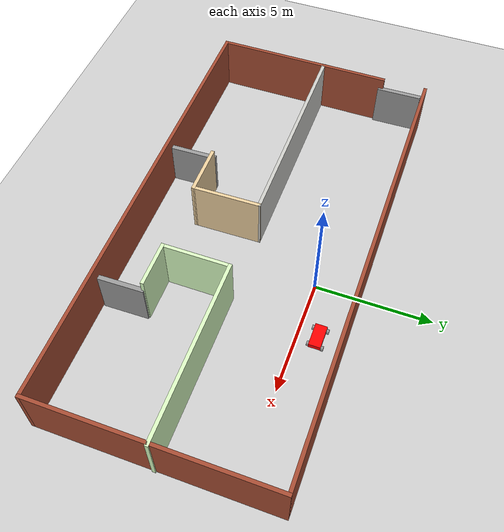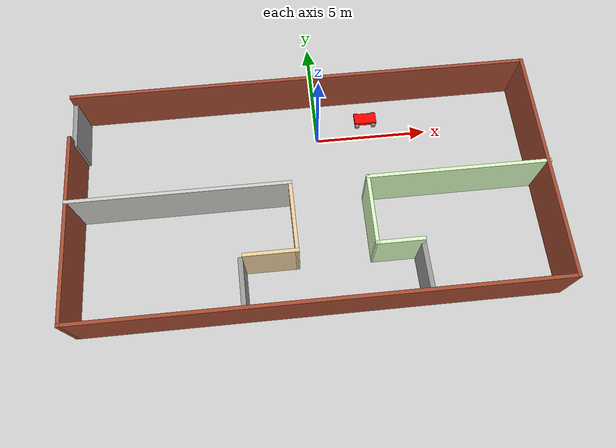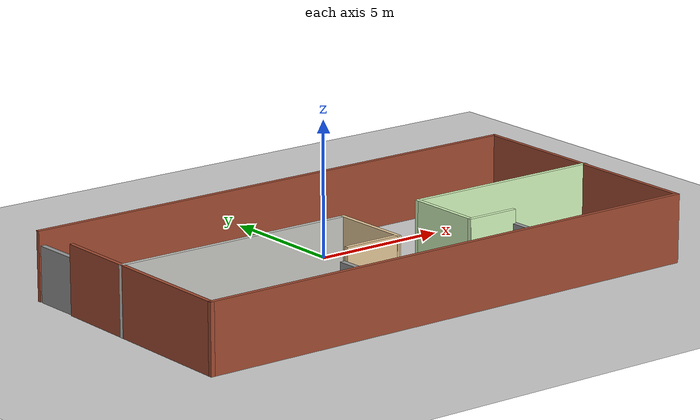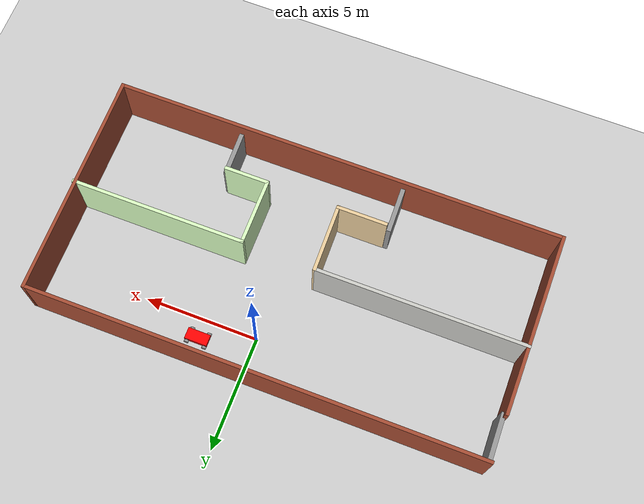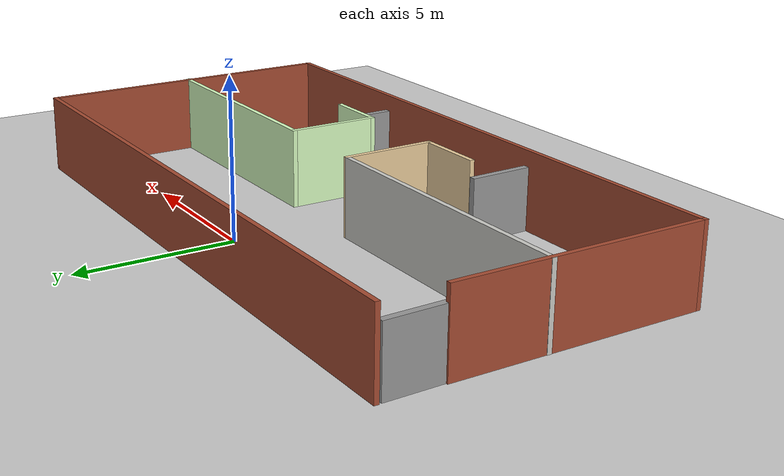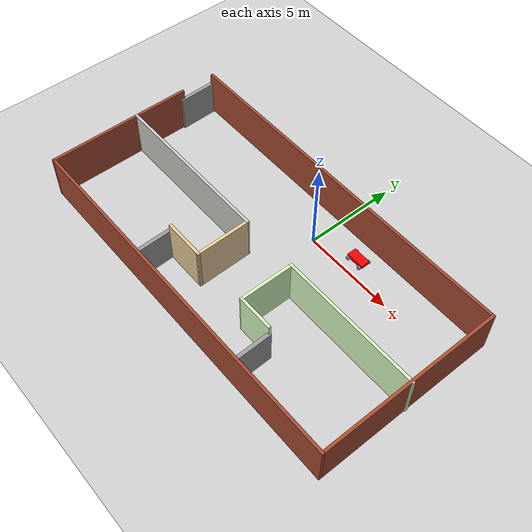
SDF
<sdf version="1.6">
 <world name="default">
  <model name="ground_plane">
   <static>1</static>
   <link name="ground_plane::link">
    <collision name="collision">
     <geometry><plane><normal>0 0 1</normal><size>100 100</size></plane></geometry>
     <surface><friction><ode><mu>100</mu><mu2>50</mu2></ode></friction></surface>
    </collision>
    <visual name="visual">
     <cast_shadows>0</cast_shadows>
     <geometry><plane><normal>0 0 1</normal><size>100 100</size></plane></geometry>
     <material>
      <script><uri>file://media/materials/scripts/gazebo.material</uri><name>Gazebo/Grey</name></script>
     </material>
    </visual>
   </link>
  </model>
  <model name="robot_space">
   <pose>-0.5915 -3.028 0 0 -0 0</pose>
   <link name="Door_3">
    <collision name="Door_3_Collision">
     <geometry><box><size>2.05653 0.2 2</size></box></geometry>
     <pose>0 0 1 0 -0 0</pose>
    </collision>
    <visual name="Door_3_Visual">
     <pose>0 0 1 0 -0 0</pose>
     <geometry><box><size>2.05653 0.2 2</size></box></geometry>
     <material>
      <script><uri>file://media/materials/scripts/gazebo.material</uri><name>Gazebo/Grey</name></script>
     </material>
    </visual>
    <pose>-3.06434 -3.84105 0 0 0 -1.54642</pose>
   </link>
   <link name="Door_4">
    <collision name="Door_4_Collision">
     <geometry><box><size>2.01581 0.2 2</size></box></geometry>
     <pose>0 0 1 0 -0 0</pose>
    </collision>
    <visual name="Door_4_Visual">
     <pose>0 0 1 0 -0 0</pose>
     <geometry><box><size>2.01581 0.2 2</size></box></geometry>
     <material>
      <script><uri>file://media/materials/scripts/gazebo.material</uri><name>Gazebo/Grey</name></script>
     </material>
    </visual>
    <pose>-9.88584 3.78209 0 0 -0 1.59102</pose>
   </link>
   <link name="Door_5">
    <collision name="Door_5_Collision">
     <geometry><box><size>1.94971 0.2 2</size></box></geometry>
     <pose>0 0 1 0 -0 0</pose>
    </collision>
    <visual name="Door_5_Visual">
     <pose>0 0 1 0 -0 0</pose>
     <geometry><box><size>1.94971 0.2 2</size></box></geometry>
     <material>
      <script><uri>file://media/materials/scripts/gazebo.material</uri><name>Gazebo/Grey</name></script>
     </material>
    </visual>
    <pose>4.28496 -3.82425 0 0 -0 1.59278</pose>
   </link>
   <link name="Wall_11">
    <collision name="Wall_11_Collision">
     <geometry><box><size>20 0.15 2.5</size></box></geometry>
     <pose>0 0 1.25 0 -0 0</pose>
    </collision>
    <visual name="Wall_11_Visual">
     <pose>0 0 1.25 0 -0 0</pose>
     <geometry><box><size>20 0.15 2.5</size></box></geometry>
     <material>
      <script><uri>file://media/materials/scripts/gazebo.material</uri><name>Gazebo/Bricks</name></script>
      <ambient>1 1 1 1</ambient>
     </material>
     <meta><layer>0</layer></meta>
    </visual>
    <pose>-0.022053 4.925 0 0 -0 0</pose>
   </link>
   <link name="Wall_12">
    <collision name="Wall_12_Collision">
     <geometry><box><size>10 0.15 2.5</size></box></geometry>
     <pose>0 0 1.25 0 -0 0</pose>
    </collision>
    <visual name="Wall_12_Visual">
     <pose>0 0 1.25 0 -0 0</pose>
     <geometry><box><size>10 0.15 2.5</size></box></geometry>
     <material>
      <script><uri>file://media/materials/scripts/gazebo.material</uri><name>Gazebo/Bricks</name></script>
      <ambient>1 1 1 1</ambient>
     </material>
     <meta><layer>0</layer></meta>
    </visual>
    <pose>9.90295 0 0 0 0 -1.5708</pose>
   </link>
   <link name="Wall_13">
    <collision name="Wall_13_Collision">
     <geometry><box><size>20 0.15 2.5</size></box></geometry>
     <pose>0 0 1.25 0 -0 0</pose>
    </collision>
    <visual name="Wall_13_Visual">
     <pose>0 0 1.25 0 -0 0</pose>
     <geometry><box><size>20 0.15 2.5</size></box></geometry>
     <material>
      <script><uri>file://media/materials/scripts/gazebo.material</uri><name>Gazebo/Bricks</name></script>
      <ambient>1 1 1 1</ambient>
     </material>
     <meta><layer>0</layer></meta>
    </visual>
    <pose>-0.022053 -4.925 0 0 -0 3.14159</pose>
   </link>
   <link name="Wall_14">
    <collision name="Wall_14_Collision">
     <geometry><box><size>8 0.15 2.5</size></box></geometry>
     <pose>0 0 1.25 0 -0 0</pose>
    </collision>
    <visual name="Wall_14_Visual">
     <pose>0 0 1.25 0 -0 0</pose>
     <geometry><box><size>8 0.15 2.5</size></box></geometry>
     <material>
      <script><uri>file://media/materials/scripts/gazebo.material</uri><name>Gazebo/Bricks</name></script>
      <ambient>1 1 1 1</ambient>
     </material>
     <meta><layer>0</layer></meta>
    </visual>
    <pose>-9.94705 -1 0 0 -0 1.5708</pose>
   </link>
   <link name="Wall_20">
    <collision name="Wall_20_Collision">
     <geometry><box><size>9.25 0.15 2.5</size></box></geometry>
     <pose>0 0 1.25 0 -0 0</pose>
    </collision>
    <visual name="Wall_20_Visual">
     <pose>0 0 1.25 0 -0 0</pose>
     <geometry><box><size>9.25 0.15 2.5</size></box></geometry>
     <material>
      <script><uri>file://media/materials/scripts/gazebo.material</uri><name>Gazebo/CeilingTiled</name></script>
      <ambient>0.921569 0.807843 0.615686 1</ambient>
     </material>
     <meta><layer>0</layer></meta>
    </visual>
    <pose>-5.4065 0.017998 0 0 -0 0</pose>
   </link>
   <link name="Wall_21">
    <collision name="Wall_21_Collision">
     <geometry><box><size>3.04738 0.15 2.5</size></box></geometry>
     <pose>0 0 1.25 0 -0 0</pose>
    </collision>
    <visual name="Wall_21_Visual">
     <pose>0 0 1.25 0 -0 0</pose>
     <geometry><box><size>3.04738 0.15 2.5</size></box></geometry>
     <material>
      <script><uri>file://media/materials/scripts/gazebo.material</uri><name>Gazebo/Grey</name></script>
      <ambient>0.921569 0.807843 0.615686 1</ambient>
     </material>
     <meta><layer>0</layer></meta>
    </visual>
    <pose>-0.833 -1.4305 0 0 0 -1.55457</pose>
   </link>
   <link name="Wall_22">
    <collision name="Wall_22_Collision">
     <geometry><box><size>2.24956 0.15 2.5</size></box></geometry>
     <pose>0 0 1.25 0 -0 0</pose>
    </collision>
    <visual name="Wall_22_Visual">
     <pose>0 0 1.25 0 -0 0</pose>
     <geometry><box><size>2.24956 0.15 2.5</size></box></geometry>
     <material>
      <script><uri>file://media/materials/scripts/gazebo.material</uri><name>Gazebo/Grey</name></script>
      <ambient>0.921569 0.807843 0.615686 1</ambient>
     </material>
     <meta><layer>0</layer></meta>
    </visual>
    <pose>-1.8595 -2.8785 0 0 -0 3.14112</pose>
   </link>
   <link name="Wall_25">
    <collision name="Wall_25_Collision">
     <geometry><box><size>7.75 0.15 2.5</size></box></geometry>
     <pose>0 0 1.25 0 -0 0</pose>
    </collision>
    <visual name="Wall_25_Visual">
     <pose>0 0 1.25 0 -0 0</pose>
     <geometry><box><size>7.75 0.15 2.5</size></box></geometry>
     <material>
      <script><uri>file://media/materials/scripts/gazebo.material</uri><name>Gazebo/Grey</name></script>
      <ambient>0.854902 1 0.760784 1</ambient>
     </material>
     <meta><layer>0</layer></meta>
    </visual>
    <pose>6.1565 -0.028002 0 0 -0 3.14159</pose>
   </link>
   <link name="Wall_26">
    <collision name="Wall_26_Collision">
     <geometry><box><size>3 0.15 2.5</size></box></geometry>
     <pose>0 0 1.25 0 -0 0</pose>
    </collision>
    <visual name="Wall_26_Visual">
     <pose>0 0 1.25 0 -0 0</pose>
     <geometry><box><size>3 0.15 2.5</size></box></geometry>
     <material>
      <script><uri>file://media/materials/scripts/gazebo.material</uri><name>Gazebo/Grey</name></script>
      <ambient>0.854902 1 0.760784 1</ambient>
     </material>
     <meta><layer>0</layer></meta>
    </visual>
    <pose>2.3565 -1.453 0 0 0 -1.5708</pose>
   </link>
   <link name="Wall_27">
    <collision name="Wall_27_Collision">
     <geometry><box><size>2 0.15 2.5</size></box></geometry>
     <pose>0 0 1.25 0 -0 0</pose>
    </collision>
    <visual name="Wall_27_Visual">
     <pose>0 0 1.25 0 -0 0</pose>
     <geometry><box><size>2 0.15 2.5</size></box></geometry>
     <material>
      <script><uri>file://media/materials/scripts/gazebo.material</uri><name>Gazebo/Grey</name></script>
      <ambient>0.854902 1 0.760784 1</ambient>
     </material>
     <meta><layer>0</layer></meta>
    </visual>
    <pose>3.28134 -2.87817 0 0 0 -0.000181</pose>
   </link>
   <static>1</static>
  </model>
  <model name="robot_1_0">
   <link name="link_0">
    <pose>-3 10 0.2 0 -0 0</pose>
    <inertial>
     <mass>1</mass>
     <inertia>
      <ixx>0.166667</ixx>
      <ixy>0</ixy>
      <ixz>0</ixz>
      <iyy>0.166667</iyy>
      <iyz>0</iyz>
      <izz>0.166667</izz>
     </inertia>
    </inertial>
    <visual name="visual">
     <geometry><box><size>1 0.5 0.2</size></box></geometry>
     <material>
      <lighting>1</lighting>
      <script><uri>file://media/materials/scripts/gazebo.material</uri><name>Gazebo/Grey</name></script>
      <shader type="pixel"><normal_map>__default__</normal_map></shader>
      <ambient>0.5 0.75 0 1</ambient>
      <diffuse>1 0 0 1</diffuse>
      <specular>0.2 0.2 0.2 1</specular>
      <emissive>0.1 0 0.1 1</emissive>
     </material>
    </visual>
    <collision name="collision">
     <geometry><box><size>1 0.5 0.2</size></box></geometry>
     <surface>
      <friction>
       <ode><mu>1</mu><mu2>1</mu2><fdir1>0 0 0</fdir1><slip1>0</slip1><slip2>0</slip2></ode>
       <torsional>
        <coefficient>1</coefficient>
        <patch_radius>0</patch_radius>
        <surface_radius>0</surface_radius>
        <use_patch_radius>1</use_patch_radius>
        <ode><slip>0</slip></ode>
       </torsional>
      </friction>
      <bounce><restitution_coefficient>0</restitution_coefficient><threshold>1e+06</threshold></bounce>
      <contact>
       <collide_without_contact>0</collide_without_contact>
       <collide_without_contact_bitmask>1</collide_without_contact_bitmask>
       <collide_bitmask>1</collide_bitmask>
       <ode>
        <soft_cfm>0</soft_cfm>
        <soft_erp>0.2</soft_erp>
        <kp>1e+13</kp>
        <kd>1</kd>
        <max_vel>0.01</max_vel>
        <min_depth>0</min_depth>
       </ode>
       <bullet>
        <split_impulse>1</split_impulse>
        <split_impulse_penetration_threshold>-0.01</split_impulse_penetration_threshold>
        <soft_cfm>0</soft_cfm>
        <soft_erp>0.2</soft_erp>
        <kp>1e+13</kp>
        <kd>1</kd>
       </bullet>
      </contact>
     </surface>
    </collision>
   </link>
   <link name="link_1">
    <pose>-2.64 9.69998 0.1 1.5707 -0 0</pose>
    <inertial>
     <mass>1</mass>
     <inertia><ixx>0.145833</ixx><ixy>0</ixy><ixz>0</ixz><iyy>0.145833</iyy><iyz>0</iyz><izz>0.125</izz></inertia>
    </inertial>
    <visual name="visual">
     <geometry><cylinder><radius>0.1</radius><length>0.1</length></cylinder></geometry>
     <material>
      <lighting>1</lighting>
      <script><uri>file://media/materials/scripts/gazebo.material</uri><name>Gazebo/Grey</name></script>
      <shader type="pixel"><normal_map>__default__</normal_map></shader>
      <ambient>0.3 0.3 0.3 1</ambient>
      <diffuse>0.7 0.7 0.7 1</diffuse>
      <specular>0.01 0.01 0.01 1</specular>
      <emissive>0 0 0 1</emissive>
     </material>
    </visual>
    <collision name="collision">
     <geometry><cylinder><radius>0.1</radius><length>0.1</length></cylinder></geometry>
     <surface>
      <friction>
       <ode><mu>1</mu><mu2>1</mu2><fdir1>0 0 0</fdir1><slip1>0</slip1><slip2>0</slip2></ode>
       <torsional>
        <coefficient>1</coefficient>
        <patch_radius>0</patch_radius>
        <surface_radius>0</surface_radius>
        <use_patch_radius>1</use_patch_radius>
        <ode><slip>0</slip></ode>
       </torsional>
      </friction>
      <bounce><restitution_coefficient>0</restitution_coefficient><threshold>1e+06</threshold></bounce>
      <contact>
       <collide_without_contact>0</collide_without_contact>
       <collide_without_contact_bitmask>1</collide_without_contact_bitmask>
       <collide_bitmask>1</collide_bitmask>
       <ode>
        <soft_cfm>0</soft_cfm>
        <soft_erp>0.2</soft_erp>
        <kp>1e+13</kp>
        <kd>1</kd>
        <max_vel>0.01</max_vel>
        <min_depth>0</min_depth>
       </ode>
       <bullet>
        <split_impulse>1</split_impulse>
        <split_impulse_penetration_threshold>-0.01</split_impulse_penetration_threshold>
        <soft_cfm>0</soft_cfm>
        <soft_erp>0.2</soft_erp>
        <kp>1e+13</kp>
        <kd>1</kd>
       </bullet>
      </contact>
     </surface>
    </collision>
   </link>
   <link name="link_1_clone">
    <pose>-3.4 9.69999 0.1 1.5707 -0 0</pose>
    <inertial>
     <mass>1</mass>
     <inertia><ixx>0.145833</ixx><ixy>0</ixy><ixz>0</ixz><iyy>0.145833</iyy><iyz>0</iyz><izz>0.125</izz></inertia>
    </inertial>
    <visual name="visual">
     <geometry><cylinder><radius>0.1</radius><length>0.1</length></cylinder></geometry>
     <material>
      <lighting>1</lighting>
      <script><uri>file://media/materials/scripts/gazebo.material</uri><name>Gazebo/Grey</name></script>
      <shader type="pixel"><normal_map>__default__</normal_map></shader>
      <ambient>0.3 0.3 0.3 1</ambient>
      <diffuse>0.7 0.7 0.7 1</diffuse>
      <specular>0.01 0.01 0.01 1</specular>
      <emissive>0 0 0 1</emissive>
     </material>
    </visual>
    <collision name="collision">
     <geometry><cylinder><radius>0.1</radius><length>0.1</length></cylinder></geometry>
     <surface>
      <friction>
       <ode><mu>1</mu><mu2>1</mu2><fdir1>0 0 0</fdir1><slip1>0</slip1><slip2>0</slip2></ode>
       <torsional>
        <coefficient>1</coefficient>
        <patch_radius>0</patch_radius>
        <surface_radius>0</surface_radius>
        <use_patch_radius>1</use_patch_radius>
        <ode><slip>0</slip></ode>
       </torsional>
      </friction>
      <bounce><restitution_coefficient>0</restitution_coefficient><threshold>1e+06</threshold></bounce>
      <contact>
       <collide_without_contact>0</collide_without_contact>
       <collide_without_contact_bitmask>1</collide_without_contact_bitmask>
       <collide_bitmask>1</collide_bitmask>
       <ode>
        <soft_cfm>0</soft_cfm>
        <soft_erp>0.2</soft_erp>
        <kp>1e+13</kp>
        <kd>1</kd>
        <max_vel>0.01</max_vel>
        <min_depth>0</min_depth>
       </ode>
       <bullet>
        <split_impulse>1</split_impulse>
        <split_impulse_penetration_threshold>-0.01</split_impulse_penetration_threshold>
        <soft_cfm>0</soft_cfm>
        <soft_erp>0.2</soft_erp>
        <kp>1e+13</kp>
        <kd>1</kd>
       </bullet>
      </contact>
     </surface>
    </collision>
   </link>
   <link name="link_1_clone_clone">
    <pose>-3.4 10.3 0.1 1.5707 -0 0</pose>
    <inertial>
     <mass>1</mass>
     <inertia><ixx>0.145833</ixx><ixy>0</ixy><ixz>0</ixz><iyy>0.145833</iyy><iyz>0</iyz><izz>0.125</izz></inertia>
    </inertial>
    <visual name="visual">
     <geometry><cylinder><radius>0.1</radius><length>0.1</length></cylinder></geometry>
     <material>
      <lighting>1</lighting>
      <script><uri>file://media/materials/scripts/gazebo.material</uri><name>Gazebo/Grey</name></script>
      <shader type="pixel"><normal_map>__default__</normal_map></shader>
      <ambient>0.3 0.3 0.3 1</ambient>
      <diffuse>0.7 0.7 0.7 1</diffuse>
      <specular>0.01 0.01 0.01 1</specular>
      <emissive>0 0 0 1</emissive>
     </material>
    </visual>
    <collision name="collision">
     <geometry><cylinder><radius>0.1</radius><length>0.1</length></cylinder></geometry>
     <surface>
      <friction>
       <ode><mu>1</mu><mu2>1</mu2><fdir1>0 0 0</fdir1><slip1>0</slip1><slip2>0</slip2></ode>
       <torsional>
        <coefficient>1</coefficient>
        <patch_radius>0</patch_radius>
        <surface_radius>0</surface_radius>
        <use_patch_radius>1</use_patch_radius>
        <ode><slip>0</slip></ode>
       </torsional>
      </friction>
      <bounce><restitution_coefficient>0</restitution_coefficient><threshold>1e+06</threshold></bounce>
      <contact>
       <collide_without_contact>0</collide_without_contact>
       <collide_without_contact_bitmask>1</collide_without_contact_bitmask>
       <collide_bitmask>1</collide_bitmask>
       <ode>
        <soft_cfm>0</soft_cfm>
        <soft_erp>0.2</soft_erp>
        <kp>1e+13</kp>
        <kd>1</kd>
        <max_vel>0.01</max_vel>
        <min_depth>0</min_depth>
       </ode>
       <bullet>
        <split_impulse>1</split_impulse>
        <split_impulse_penetration_threshold>-0.01</split_impulse_penetration_threshold>
        <soft_cfm>0</soft_cfm>
        <soft_erp>0.2</soft_erp>
        <kp>1e+13</kp>
        <kd>1</kd>
       </bullet>
      </contact>
     </surface>
    </collision>
   </link>
   <link name="link_1_clone_clone_clone">
    <pose>-2.6 10.3 0.1 1.5707 -0 0</pose>
    <inertial>
     <mass>1</mass>
     <inertia><ixx>0.145833</ixx><ixy>0</ixy><ixz>0</ixz><iyy>0.145833</iyy><iyz>0</iyz><izz>0.125</izz></inertia>
    </inertial>
    <visual name="visual">
     <geometry><cylinder><radius>0.1</radius><length>0.1</length></cylinder></geometry>
     <material>
      <lighting>1</lighting>
      <script><uri>file://media/materials/scripts/gazebo.material</uri><name>Gazebo/Grey</name></script>
      <shader type="pixel"><normal_map>__default__</normal_map></shader>
      <ambient>0.3 0.3 0.3 1</ambient>
      <diffuse>0.7 0.7 0.7 1</diffuse>
      <specular>0.01 0.01 0.01 1</specular>
      <emissive>0 0 0 1</emissive>
     </material>
    </visual>
    <collision name="collision">
     <geometry><cylinder><radius>0.1</radius><length>0.1</length></cylinder></geometry>
     <surface>
      <friction>
       <ode><mu>1</mu><mu2>1</mu2><fdir1>0 0 0</fdir1><slip1>0</slip1><slip2>0</slip2></ode>
       <torsional>
        <coefficient>1</coefficient>
        <patch_radius>0</patch_radius>
        <surface_radius>0</surface_radius>
        <use_patch_radius>1</use_patch_radius>
        <ode><slip>0</slip></ode>
       </torsional>
      </friction>
      <bounce><restitution_coefficient>0</restitution_coefficient><threshold>1e+06</threshold></bounce>
      <contact>
       <collide_without_contact>0</collide_without_contact>
       <collide_without_contact_bitmask>1</collide_without_contact_bitmask>
       <collide_bitmask>1</collide_bitmask>
       <ode>
        <soft_cfm>0</soft_cfm>
        <soft_erp>0.2</soft_erp>
        <kp>1e+13</kp>
        <kd>1</kd>
        <max_vel>0.01</max_vel>
        <min_depth>0</min_depth>
       </ode>
       <bullet>
        <split_impulse>1</split_impulse>
        <split_impulse_penetration_threshold>-0.01</split_impulse_penetration_threshold>
        <soft_cfm>0</soft_cfm>
        <soft_erp>0.2</soft_erp>
        <kp>1e+13</kp>
        <kd>1</kd>
       </bullet>
      </contact>
     </surface>
    </collision>
   </link>
   <joint name="link_0_JOINT_1" type="revolute">
    <parent>link_0</parent>
    <child>link_1</child>
    <axis>
     <xyz>0 0 1</xyz>
     <use_parent_model_frame>0</use_parent_model_frame>
     <limit>
      <lower>-1.79769e+308</lower>
      <upper>1.79769e+308</upper>
      <effort>-1</effort>
      <velocity>-1</velocity>
     </limit>
     <dynamics>
      <spring_reference>0</spring_reference>
      <spring_stiffness>0</spring_stiffness>
      <damping>0</damping>
      <friction>0</friction>
     </dynamics>
    </axis>
    <physics>
     <ode><limit><cfm>0</cfm><erp>0.2</erp></limit><suspension><cfm>0</cfm><erp>0.2</erp></suspension></ode>
    </physics>
   </joint>
   <joint name="link_0_JOINT_3" type="revolute">
    <parent>link_0</parent>
    <child>link_1_clone_clone_clone</child>
    <axis>
     <xyz>0 0 1</xyz>
     <use_parent_model_frame>0</use_parent_model_frame>
     <limit>
      <lower>-1.79769e+308</lower>
      <upper>1.79769e+308</upper>
      <effort>-1</effort>
      <velocity>-1</velocity>
     </limit>
     <dynamics>
      <spring_reference>0</spring_reference>
      <spring_stiffness>0</spring_stiffness>
      <damping>0</damping>
      <friction>0</friction>
     </dynamics>
    </axis>
    <physics>
     <ode><limit><cfm>0</cfm><erp>0.2</erp></limit><suspension><cfm>0</cfm><erp>0.2</erp></suspension></ode>
    </physics>
   </joint>
   <joint name="link_0_JOINT_5" type="revolute">
    <parent>link_0</parent>
    <child>link_1_clone_clone</child>
    <axis>
     <xyz>0 0 1</xyz>
     <use_parent_model_frame>0</use_parent_model_frame>
     <limit>
      <lower>-1.79769e+308</lower>
      <upper>1.79769e+308</upper>
      <effort>-1</effort>
      <velocity>-1</velocity>
     </limit>
     <dynamics>
      <spring_reference>0</spring_reference>
      <spring_stiffness>0</spring_stiffness>
      <damping>0</damping>
      <friction>0</friction>
     </dynamics>
    </axis>
    <physics>
     <ode><limit><cfm>0</cfm><erp>0.2</erp></limit><suspension><cfm>0</cfm><erp>0.2</erp></suspension></ode>
    </physics>
   </joint>
   <joint name="link_0_JOINT_7" type="revolute">
    <parent>link_0</parent>
    <child>link_1_clone</child>
    <axis>
     <xyz>0 0 1</xyz>
     <use_parent_model_frame>0</use_parent_model_frame>
     <limit>
      <lower>-1.79769e+308</lower>
      <upper>1.79769e+308</upper>
      <effort>-1</effort>
      <velocity>-1</velocity>
     </limit>
     <dynamics>
      <spring_reference>0</spring_reference>
      <spring_stiffness>0</spring_stiffness>
      <damping>0</damping>
      <friction>0</friction>
     </dynamics>
    </axis>
    <physics>
     <ode><limit><cfm>0</cfm><erp>0.2</erp></limit><suspension><cfm>0</cfm><erp>0.2</erp></suspension></ode>
    </physics>
   </joint>
   <static>0</static>
   <pose>5.31815 -9.16876 0 0 -0 0</pose>
  </model>
 </world>
</sdf>
